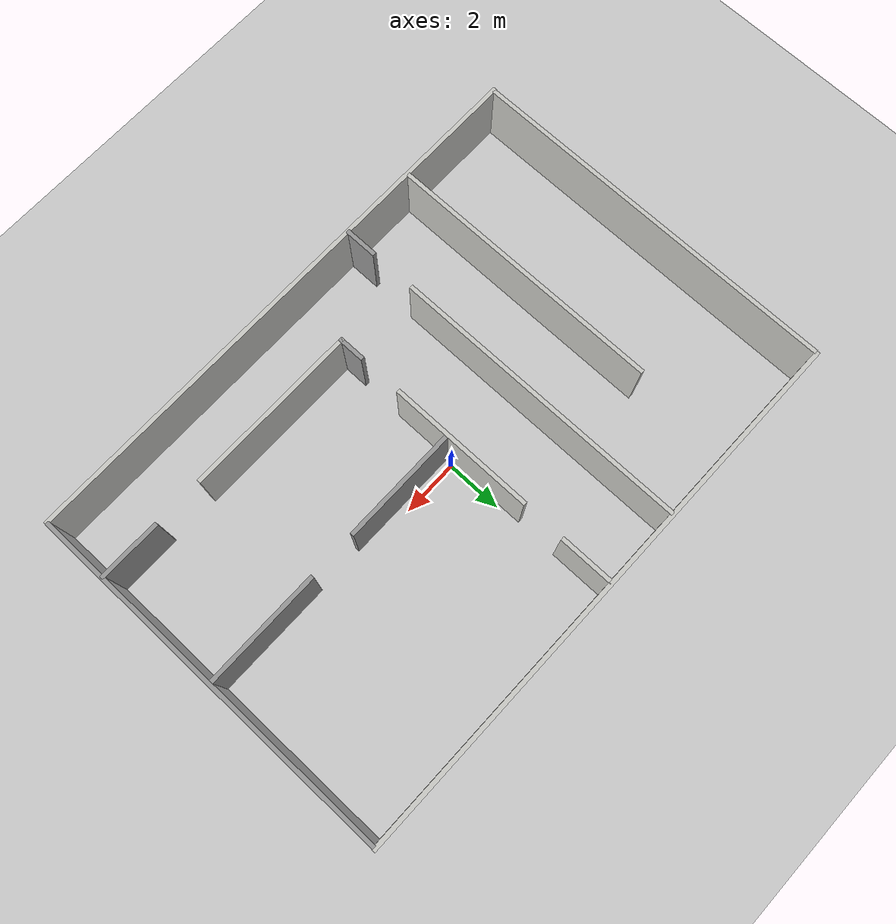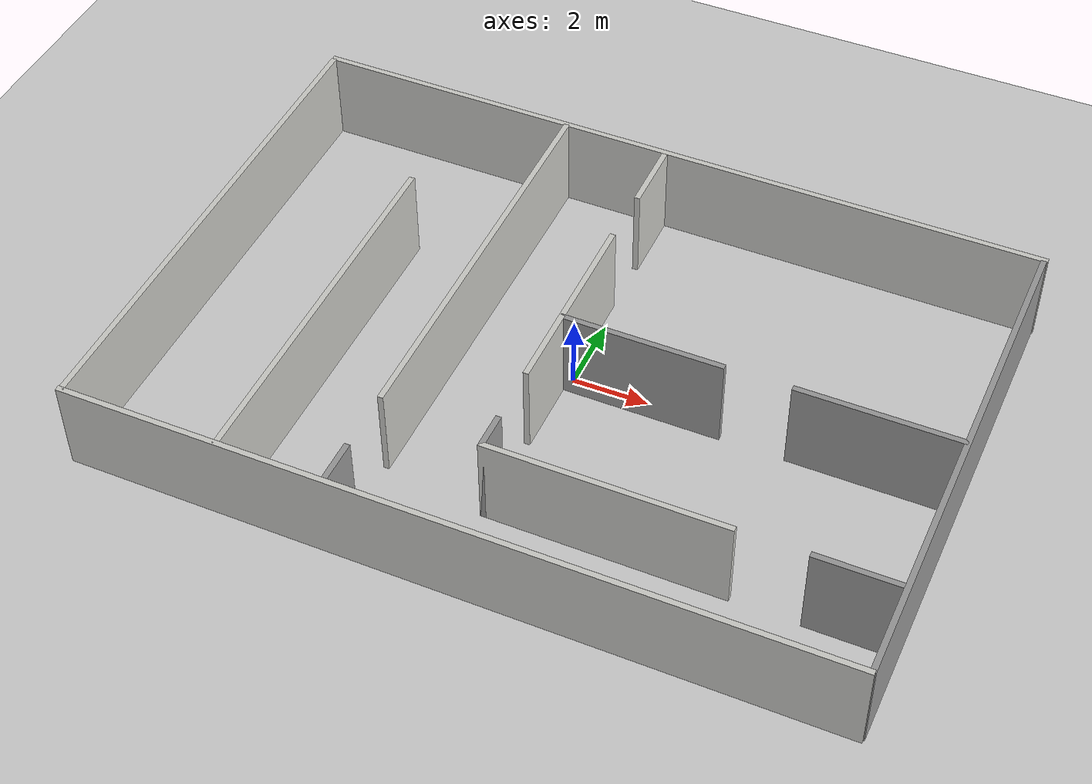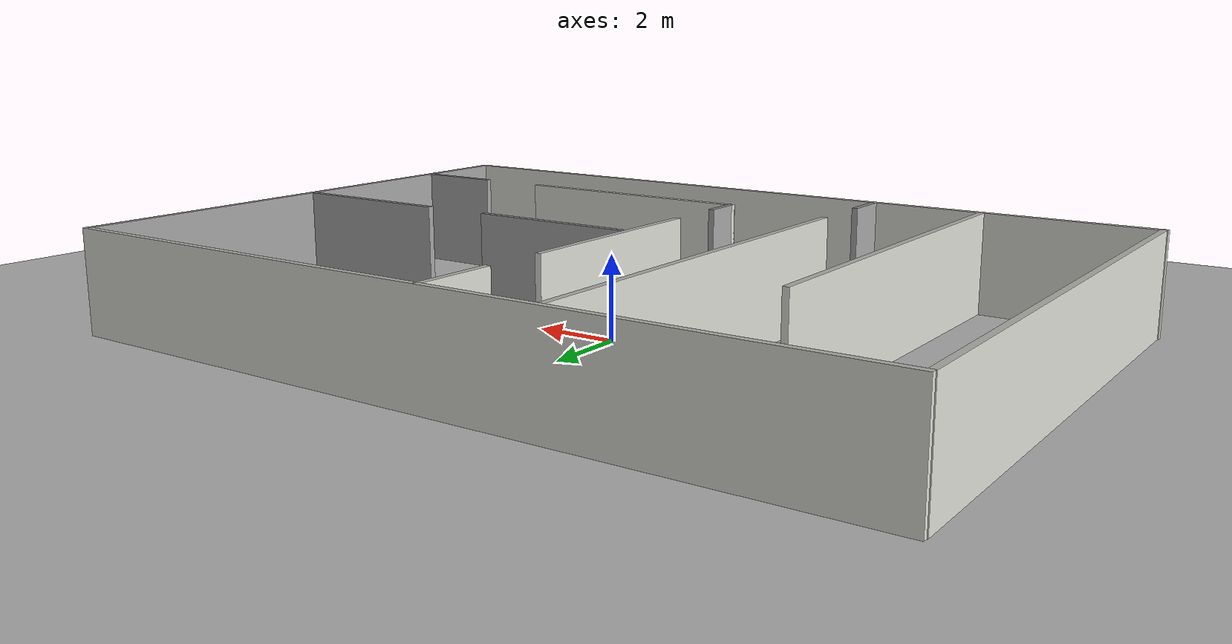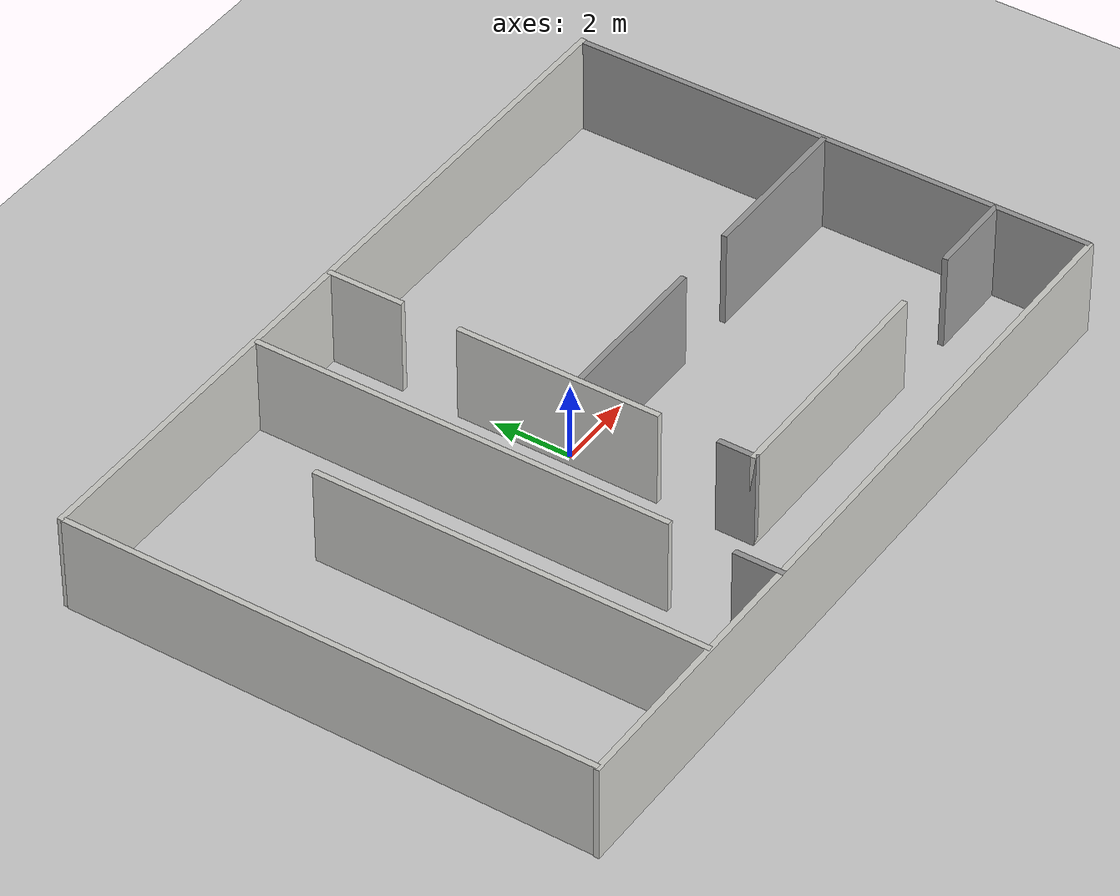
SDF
<sdf version="1.6">
 <world name="default">
  <plugin filename="gz-sim-physics-system" name="gz::sim::systems::Physics"/>
  <plugin filename="gz-sim-user-commands-system" name="gz::sim::systems::UserCommands"/>
  <plugin filename="gz-sim-scene-broadcaster-system" name="gz::sim::systems::SceneBroadcaster"/>
  <plugin filename="gz-sim-contact-system" name="gz::sim::systems::Contact"/>
  <plugin filename="gz-sim-sensors-system" name="gz::sim::systems::Sensors">
   <render_engine>ogre</render_engine>
  </plugin>
  <light name="sun" type="directional">
   <pose>0 0 10 0 -0 0</pose>
   <diffuse>0.8 0.8 0.8 1</diffuse>
   <specular>0.2 0.2 0.2 1</specular>
   <attenuation>
    <range>1000</range>
    <constant>0.9</constant>
    <linear>0.01</linear>
    <quadratic>0.001</quadratic>
   </attenuation>
   <direction>-0.5 0.1 -0.9</direction>
  </light>
  <model name="ground_plane">
   <static>1</static>
   <link name="link">
    <collision name="collision">
     <geometry><plane><normal>0 0 1</normal><size>100 100</size></plane></geometry>
     <surface>
      <contact><collide_bitmask>65535</collide_bitmask></contact>
      <friction><ode><mu>100</mu><mu2>50</mu2></ode></friction>
     </surface>
    </collision>
    <visual name="visual">
     <cast_shadows>0</cast_shadows>
     <geometry><plane><normal>0 0 1</normal><size>100 100</size></plane></geometry>
     <material>
      <script><uri>file://media/materials/scripts/gazebo.material</uri><name>Gazebo/Grey</name></script>
     </material>
    </visual>
   </link>
  </model>
  <gravity>0 0 -9.8</gravity>
  <magnetic_field>6e-06 2.3e-05 -4.2e-05</magnetic_field>
  <atmosphere type="adiabatic"/>
  <physics name="default_physics" default="0" type="ode">
   <max_step_size>0.001</max_step_size>
   <real_time_factor>1</real_time_factor>
   <real_time_update_rate>1000</real_time_update_rate>
  </physics>
  <scene><ambient>0.4 0.4 0.4 1</ambient><background>0.7 0.7 0.7 1</background><shadows>1</shadows></scene>
  <audio><device>default</device></audio>
  <spherical_coordinates>
   <surface_model>EARTH_WGS84</surface_model>
   <latitude_deg>0</latitude_deg>
   <longitude_deg>0</longitude_deg>
   <elevation>0</elevation>
   <heading_deg>0</heading_deg>
  </spherical_coordinates>
  <model name="evaluation_floor">
   <pose>0.022031 -0.490342 0 0 -0 0</pose>
   <link name="Wall_13">
    <collision name="Wall_13_Collision">
     <geometry><box><size>13.5 0.15 2.5</size></box></geometry>
     <pose>0 0 1.25 0 -0 0</pose>
    </collision>
    <visual name="Wall_13_Visual">
     <pose>0 0 1.25 0 -0 0</pose>
     <geometry><box><size>13.5 0.15 2.5</size></box></geometry>
     <material>
      <script><uri>file://media/materials/scripts/gazebo.material</uri><name>Gazebo/Grey</name></script>
      <ambient>1 1 1 1</ambient>
     </material>
     <meta><layer>0</layer></meta>
    </visual>
    <pose>9.9274 -0.018331 0 0 -0 1.5708</pose>
   </link>
   <link name="Wall_16">
    <collision name="Wall_16_Collision">
     <geometry><box><size>20 0.15 2.5</size></box></geometry>
     <pose>0 0 1.25 0 -0 0</pose>
    </collision>
    <visual name="Wall_16_Visual">
     <pose>0 0 1.25 0 -0 0</pose>
     <geometry><box><size>20 0.15 2.5</size></box></geometry>
     <material>
      <script><uri>file://media/materials/scripts/gazebo.material</uri><name>Gazebo/CeilingTiled</name></script>
      <ambient>1 1 1 1</ambient>
     </material>
     <meta><layer>0</layer></meta>
    </visual>
    <pose>0.023262 6.76923 0 0 -0 0</pose>
   </link>
   <link name="Wall_18">
    <collision name="Wall_18_Collision">
     <geometry><box><size>20 0.15 2.5</size></box></geometry>
     <pose>0 0 1.25 0 -0 0</pose>
    </collision>
    <visual name="Wall_18_Visual">
     <pose>0 0 1.25 0 -0 0</pose>
     <geometry><box><size>20 0.15 2.5</size></box></geometry>
     <material>
      <script><uri>file://media/materials/scripts/gazebo.material</uri><name>Gazebo/CeilingTiled</name></script>
      <ambient>1 1 1 1</ambient>
     </material>
     <meta><layer>0</layer></meta>
    </visual>
    <pose>-0.023262 -6.76923 0 0 -0 0</pose>
   </link>
   <link name="Wall_21">
    <collision name="Wall_21_Collision">
     <geometry><box><size>10 0.15 2.5</size></box></geometry>
     <pose>0 0 1.25 0 -0 0</pose>
    </collision>
    <visual name="Wall_21_Visual">
     <pose>0 0 1.25 0 -0 0</pose>
     <geometry><box><size>10 0.15 2.5</size></box></geometry>
     <material>
      <script><uri>file://media/materials/scripts/gazebo.material</uri><name>Gazebo/CeilingTiled</name></script>
      <ambient>1 1 1 1</ambient>
     </material>
     <meta><layer>0</layer></meta>
    </visual>
    <pose>-5.77018 -1.79504 0 0 -0 1.5708</pose>
   </link>
   <link name="Wall_23">
    <collision name="Wall_23_Collision">
     <geometry><box><size>10.75 0.15 2.5</size></box></geometry>
     <pose>0 0 1.25 0 -0 0</pose>
    </collision>
    <visual name="Wall_23_Visual">
     <pose>0 0 1.25 0 -0 0</pose>
     <geometry><box><size>10.75 0.15 2.5</size></box></geometry>
     <material>
      <script><uri>file://media/materials/scripts/gazebo.material</uri><name>Gazebo/CeilingTiled</name></script>
      <ambient>1 1 1 1</ambient>
     </material>
     <meta><layer>0</layer></meta>
    </visual>
    <pose>-2.97875 1.37885 0 0 -0 -1.5708</pose>
   </link>
   <link name="Wall_25">
    <collision name="Wall_25_Collision">
     <geometry><box><size>1.25 0.15 2.5</size></box></geometry>
     <pose>0 0 1.25 0 -0 0</pose>
    </collision>
    <visual name="Wall_25_Visual">
     <pose>0 0 1.25 0 -0 0</pose>
     <geometry><box><size>1.25 0.15 2.5</size></box></geometry>
     <material>
      <script><uri>file://media/materials/scripts/gazebo.material</uri><name>Gazebo/Grey</name></script>
      <ambient>1 1 1 1</ambient>
     </material>
     <meta><layer>0</layer></meta>
    </visual>
    <pose>-2.9934 -6.21656 0 0 -0 1.5708</pose>
   </link>
   <link name="Wall_27">
    <collision name="Wall_27_Collision">
     <geometry><box><size>2 0.15 2.5</size></box></geometry>
     <pose>0 0 1.25 0 -0 0</pose>
    </collision>
    <visual name="Wall_27_Visual">
     <pose>0 0 1.25 0 -0 0</pose>
     <geometry><box><size>2 0.15 2.5</size></box></geometry>
     <material>
      <script><uri>file://media/materials/scripts/gazebo.material</uri><name>Gazebo/CeilingTiled</name></script>
      <ambient>1 1 1 1</ambient>
     </material>
     <meta><layer>0</layer></meta>
    </visual>
    <pose>-0.167479 5.8103 0 0 -0 -1.5708</pose>
   </link>
   <link name="Wall_29">
    <collision name="Wall_29_Collision">
     <geometry><box><size>5.25 0.15 2.5</size></box></geometry>
     <pose>0 0 1.25 0 -0 0</pose>
    </collision>
    <visual name="Wall_29_Visual">
     <pose>0 0 1.25 0 -0 0</pose>
     <geometry><box><size>5.25 0.15 2.5</size></box></geometry>
     <material>
      <script><uri>file://media/materials/scripts/gazebo.material</uri><name>Gazebo/CeilingTiled</name></script>
      <ambient>1 1 1 1</ambient>
     </material>
     <meta><layer>0</layer></meta>
    </visual>
    <pose>-0.202658 0.691353 0 0 -0 -1.5708</pose>
   </link>
   <link name="Wall_31">
    <collision name="Wall_31_Collision">
     <geometry><box><size>1 0.15 2.5</size></box></geometry>
     <pose>0 0 1.25 0 -0 0</pose>
    </collision>
    <visual name="Wall_31_Visual">
     <pose>0 0 1.25 0 -0 0</pose>
     <geometry><box><size>1 0.15 2.5</size></box></geometry>
     <material>
      <script><uri>file://media/materials/scripts/gazebo.material</uri><name>Gazebo/Grey</name></script>
      <ambient>1 1 1 1</ambient>
     </material>
     <meta><layer>0</layer></meta>
    </visual>
    <pose>-0.202658 -3.92672 0 0 -0 -1.5708</pose>
   </link>
   <link name="Wall_32">
    <collision name="Wall_32_Collision">
     <geometry><box><size>6.25 0.15 2.5</size></box></geometry>
     <pose>0 0 1.25 0 -0 0</pose>
    </collision>
    <visual name="Wall_32_Visual">
     <pose>0 0 1.25 0 -0 0</pose>
     <geometry><box><size>6.25 0.15 2.5</size></box></geometry>
     <material>
      <script><uri>file://media/materials/scripts/gazebo.material</uri><name>Gazebo/CeilingTiled</name></script>
      <ambient>1 1 1 1</ambient>
     </material>
     <meta><layer>0</layer></meta>
    </visual>
    <pose>2.84734 -4.35172 0 0 -0 0</pose>
   </link>
   <link name="Wall_34">
    <collision name="Wall_34_Collision">
     <geometry><box><size>2.25 0.15 2.5</size></box></geometry>
     <pose>0 0 1.25 0 -0 0</pose>
    </collision>
    <visual name="Wall_34_Visual">
     <pose>0 0 1.25 0 -0 0</pose>
     <geometry><box><size>2.25 0.15 2.5</size></box></geometry>
     <material>
      <script><uri>file://media/materials/scripts/gazebo.material</uri><name>Gazebo/Grey</name></script>
      <ambient>1 1 1 1</ambient>
     </material>
     <meta><layer>0</layer></meta>
    </visual>
    <pose>8.83292 -4.34601 0 0 -0 0</pose>
   </link>
   <link name="Wall_36">
    <collision name="Wall_36_Collision">
     <geometry><box><size>4.25 0.15 2.5</size></box></geometry>
     <pose>0 0 1.25 0 -0 0</pose>
    </collision>
    <visual name="Wall_36_Visual">
     <pose>0 0 1.25 0 -0 0</pose>
     <geometry><box><size>4.25 0.15 2.5</size></box></geometry>
     <material>
      <script><uri>file://media/materials/scripts/gazebo.material</uri><name>Gazebo/Grey</name></script>
      <ambient>1 1 1 1</ambient>
     </material>
     <meta><layer>0</layer></meta>
    </visual>
    <pose>1.88252 0.156868 0 0 -0 0</pose>
   </link>
   <link name="Wall_38">
    <collision name="Wall_38_Collision">
     <geometry><box><size>4.25 0.15 2.5</size></box></geometry>
     <pose>0 0 1.25 0 -0 0</pose>
    </collision>
    <visual name="Wall_38_Visual">
     <pose>0 0 1.25 0 -0 0</pose>
     <geometry><box><size>4.25 0.15 2.5</size></box></geometry>
     <material>
      <script><uri>file://media/materials/scripts/gazebo.material</uri><name>Gazebo/Grey</name></script>
      <ambient>1 1 1 1</ambient>
     </material>
     <meta><layer>0</layer></meta>
    </visual>
    <pose>7.81267 0.171933 0 0 -0 0</pose>
   </link>
   <link name="Wall_7">
    <collision name="Wall_7_Collision">
     <geometry><box><size>13.5 0.15 2.5</size></box></geometry>
     <pose>0 0 1.25 0 -0 0</pose>
    </collision>
    <visual name="Wall_7_Visual">
     <pose>0 0 1.25 0 -0 0</pose>
     <geometry><box><size>13.5 0.15 2.5</size></box></geometry>
     <material>
      <script><uri>file://media/materials/scripts/gazebo.material</uri><name>Gazebo/CeilingTiled</name></script>
      <ambient>1 1 1 1</ambient>
     </material>
     <meta><layer>0</layer></meta>
    </visual>
    <pose>-9.9226 -0.018331 0 0 -0 1.5708</pose>
   </link>
   <static>1</static>
  </model>
 </world>
</sdf>
